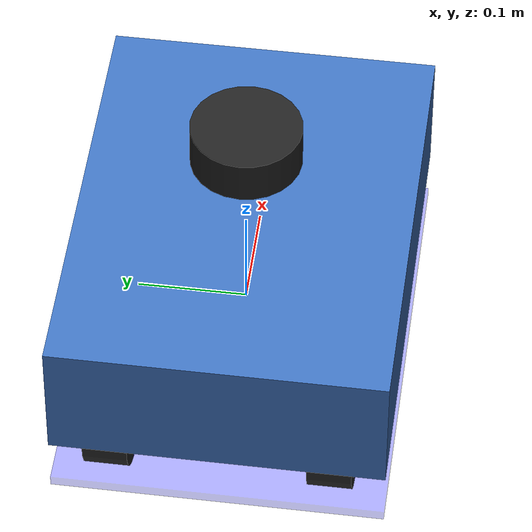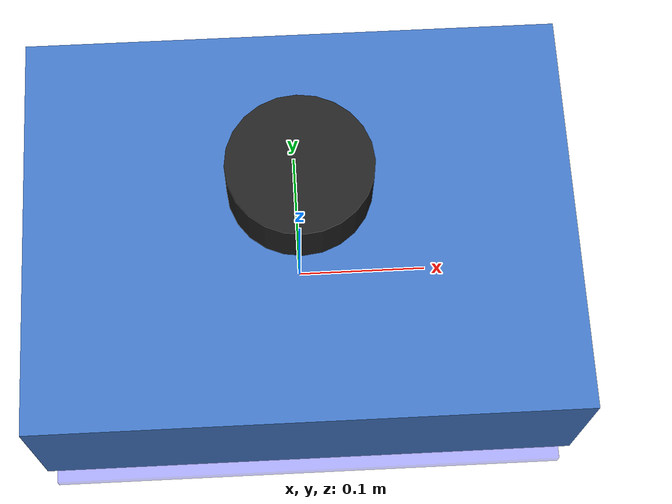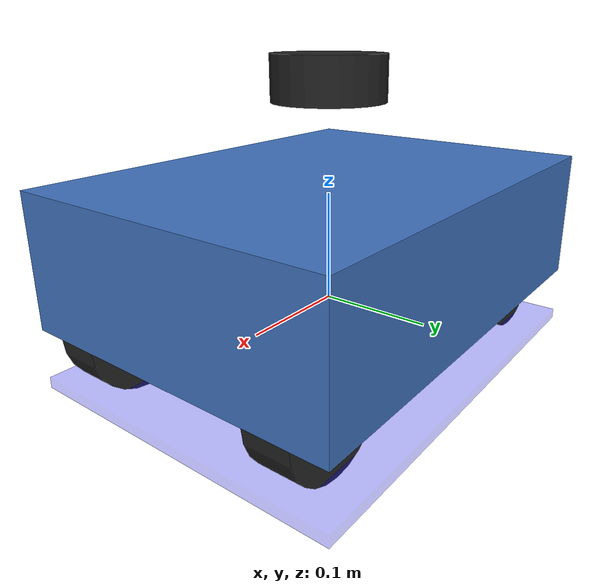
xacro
<?xml version="1.0"?>
<robot name="meister_robot" xmlns:xacro="http://www.ros.org/wiki/xacro" xmlns:gazebo="http://gazebo.apache.org/xmlns/gazebo">

  <!-- ────────────────────────────────────
       Arguments
       ──────────────────────────────────── -->
  <xacro:arg name="namespace" default=""/>
  <xacro:property name="ns" value="$(arg namespace)"/>

  <!-- ────────────────────────────────────
       Includes
       ──────────────────────────────────── -->
  <xacro:include filename="mecanum_wheel.xacro"/>
  <xacro:include filename="lidar.xacro"/>
  <xacro:include filename="inertial_macros.xacro"/>

  <!-- ────────────────────────────────────
       Robot constants
       ──────────────────────────────────── -->
  <!-- Body dimensions -->
  <xacro:property name="body_length" value="0.4"/>
  <xacro:property name="body_width"  value="0.3"/>
  <xacro:property name="body_height" value="0.12"/>
  <xacro:property name="body_mass"   value="2.0"/>

  <!-- Wheel geometry -->
  <xacro:property name="wheel_radius" value="0.05"/>

  <!-- Kinematic layout: wheel positions from robot centre (m) -->
  <!-- wheelbase (front-rear axle distance) = 0.30 m → half = 0.15 -->
  <xacro:property name="lx" value="0.15"/>
  <!-- track   (left-right wheel distance)  = 0.20 m → half = 0.10 -->
  <xacro:property name="ly" value="0.10"/>
  <!-- L = lx + ly ≈ 0.25 m (used by mecanum_controller.py) -->
  <xacro:property name="L"  value="${lx + ly}"/>

  <!-- ────────────────────────────────────
       Links: base_footprint → base_link
       ──────────────────────────────────── -->
  <link name="base_footprint">
    <collision>
      <geometry>
        <box size="${body_length} ${body_width} 0.01"/>
      </geometry>
    </collision>
    <visual>
      <geometry>
        <box size="${body_length} ${body_width} 0.01"/>
      </geometry>
      <material name="footprint_material">
        <color rgba="0.0 0.0 1.0 0.3"/>
      </material>
    </visual>
  </link>

  <link name="base_link"/>

  <!-- base_footprint sits on the ground (z=0 in world);
       base_link is wheel_radius above ground so wheel axes are at z=0 on base_link -->
  <joint name="base_footprint_joint" type="fixed">
    <parent link="base_link"/>
    <child link="base_footprint"/>
    <origin xyz="0 0 -${wheel_radius}"/>
  </joint>

  <!-- ────────────────────────────────────
       Chassis body
       ──────────────────────────────────── -->
  <link name="chassis">
    <visual>
      <origin xyz="0 0 ${body_height/2}" rpy="0 0 0"/>
      <geometry>
        <box size="${body_length} ${body_width} ${body_height}"/>
      </geometry>
      <material name="chassis_material">
        <color rgba="0.25 0.45 0.75 1.0"/>
      </material>
    </visual>
    <collision>
      <origin xyz="0 0 ${body_height/2}"/>
      <geometry>
        <box size="${body_length} ${body_width} ${body_height}"/>
      </geometry>
    </collision>
    <xacro:inertial_box mass="${body_mass}" x="${body_length}" y="${body_width}" z="${body_height}">
      <origin xyz="0 0 ${body_height/2}" rpy="0 0 0"/>
    </xacro:inertial_box>
  </link>

  <joint name="chassis_joint" type="fixed">
    <parent link="base_link"/>
    <child link="chassis"/>
    <origin xyz="0 0 0"/>
  </joint>

  <!-- ────────────────────────────────────
       Mecanum wheels
       ──────────────────────────────────── -->
  <xacro:mecanum_wheel name="lf" x="${ lx}" y="${ ly}" z="0"/>
  <xacro:mecanum_wheel name="rf" x="${ lx}" y="${-ly}" z="0"/>
  <xacro:mecanum_wheel name="lr" x="${-lx}" y="${ ly}" z="0"/>
  <xacro:mecanum_wheel name="rr" x="${-lx}" y="${-ly}" z="0"/>

  <!-- ────────────────────────────────────
       2D LiDAR
       ──────────────────────────────────── -->
  <xacro:lidar name="laser_link" x="0" y="0" z="0.2" roll="0" pitch="0" yaw="0"/>

  <!-- ────────────────────────────────────
       Gazebo simulation plugins
       ──────────────────────────────────── -->

  <!-- Friction properties -->
  <gazebo reference="chassis">
    <mu1>0.8</mu1>
    <mu2>0.8</mu2>
  </gazebo>

  <gazebo reference="lf_wheel">
    <mu1>0.4</mu1>
    <mu2>0.4</mu2>
  </gazebo>
  <gazebo reference="rf_wheel">
    <mu1>0.4</mu1>
    <mu2>0.4</mu2>
  </gazebo>
  <gazebo reference="lr_wheel">
    <mu1>0.4</mu1>
    <mu2>0.4</mu2>
  </gazebo>
  <gazebo reference="rr_wheel">
    <mu1>0.4</mu1>
    <mu2>0.4</mu2>
  </gazebo>

  <!-- Joint state publisher (publishes joint_states topic) -->
  <gazebo>
    <plugin filename="gz-sim-joint-state-publisher-system"
            name="gz::sim::systems::JointStatePublisher">
      <topic>joint_states</topic>
      <joint_name>lf_wheel_joint</joint_name>
      <joint_name>rf_wheel_joint</joint_name>
      <joint_name>lr_wheel_joint</joint_name>
      <joint_name>rr_wheel_joint</joint_name>
    </plugin>
  </gazebo>

  <gazebo>
    <plugin filename="libgz-sim-mecanum-drive-system"
            name="gz::sim::systems::MecanumDrive">
      <front_left_joint>lf_wheel_joint</front_left_joint>
      <front_right_joint>rf_wheel_joint</front_right_joint>
      <back_left_joint>lr_wheel_joint</back_left_joint>
      <back_right_joint>rr_wheel_joint</back_right_joint>
      <wheel_separation>${2 * ly}</wheel_separation>
      <wheelbase>${2 * lx}</wheelbase>
      <wheel_radius>${wheel_radius}</wheel_radius>
      <odom_publish_frequency>50</odom_publish_frequency>
      <topic>${ns + '/cmd_vel' if ns else 'cmd_vel'}</topic>
      <min_acceleration>-3.0</min_acceleration>
      <max_acceleration>3.0</max_acceleration>
      <odom_topic>${ns + '/odom' if ns else 'odom'}</odom_topic>
      <frame_id>${ns + '/odom' if ns else 'odom'}</frame_id>
      <child_frame_id>${ns + '/base_link' if ns else 'base_link'}</child_frame_id>
      <tf_topic>/tf</tf_topic>
    </plugin>
  </gazebo>

</robot>

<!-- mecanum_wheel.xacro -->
<robot xmlns:xacro="http://www.ros.org/wiki/xacro">

  <xacro:include filename="inertial_macros.xacro"/>

  <xacro:macro name="mecanum_wheel" params="name x y z">
    <xacro:property name="wh_r" value="0.05"/>
    <xacro:property name="wh_w" value="0.04"/>
    <xacro:property name="wh_mass" value="0.15"/>
    <!-- side: +1 for left (y>0), -1 for right (y<0) -->
    <xacro:property name="side" value="${1 if y > 0 else -1}"/>

    <joint name="${name}_wheel_joint" type="continuous">
      <parent link="base_link"/>
      <child link="${name}_wheel"/>
      <origin xyz="${x} ${y} ${z}" rpy="${-1.5708 * side} 0 0"/>
      <!-- Left wheels (+side):   axis 0 0  1  →  spin +Z in child = +Y in parent (forward)
           Right wheels (-side): axis 0 0 -1  →  spin -Z in child = +Y in parent (forward) -->
      <axis xyz="0 0 ${side}"/>
      <limit effort="0.3" velocity="10.0"/>
      <dynamics damping="0.01" friction="0.001"/>
    </joint>

    <link name="${name}_wheel">
      <visual>
        <origin xyz="0 0 0" rpy="0 0 0"/>
        <geometry>
          <cylinder radius="${wh_r}" length="${wh_w}"/>
        </geometry>
        <material name="wheel_material">
          <color rgba="0.15 0.15 0.15 1.0"/>
        </material>
      </visual>
      <collision>
        <origin xyz="0 0 0" rpy="0 0 0"/>
        <geometry>
          <cylinder radius="${wh_r}" length="${wh_w}"/>
        </geometry>
      </collision>
      <xacro:inertial_cylinder mass="${wh_mass}" length="${wh_w}" radius="${wh_r}">
        <origin xyz="0 0 0" rpy="0 0 0"/>
      </xacro:inertial_cylinder>
    </link>

    <!-- Transmission block (URDF standard, no ros2_control runtime required) -->
    <transmission name="${name}_wheel_trans">
      <type>transmission_interface/SimpleTransmission</type>
      <joint name="${name}_wheel_joint">
        <hardwareInterface>hardware_interface/VelocityJointInterface</hardwareInterface>
      </joint>
      <actuator name="${name}_wheel_motor">
        <mechanicalReduction>1</mechanicalReduction>
      </actuator>
    </transmission>
  </xacro:macro>

</robot>

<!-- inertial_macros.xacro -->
<robot xmlns:xacro="http://www.ros.org/wiki/xacro">

  <!-- Standard inertial calculations
       https://en.wikipedia.org/wiki/List_of_moments_of_inertia -->

  <xacro:macro name="inertial_sphere" params="mass radius *origin">
    <inertial>
      <xacro:insert_block name="origin"/>
      <mass value="${mass}"/>
      <inertia ixx="${(2/5) * mass * (radius*radius)}" ixy="0.0" ixz="0.0"
               iyy="${(2/5) * mass * (radius*radius)}" iyz="0.0"
               izz="${(2/5) * mass * (radius*radius)}"/>
    </inertial>
  </xacro:macro>

  <xacro:macro name="inertial_box" params="mass x y z *origin">
    <inertial>
      <xacro:insert_block name="origin"/>
      <mass value="${mass}"/>
      <inertia ixx="${(1/12) * mass * (y*y+z*z)}" ixy="0.0" ixz="0.0"
               iyy="${(1/12) * mass * (x*x+z*z)}" iyz="0.0"
               izz="${(1/12) * mass * (x*x+y*y)}"/>
    </inertial>
  </xacro:macro>

  <xacro:macro name="inertial_cylinder" params="mass length radius *origin">
    <inertial>
      <xacro:insert_block name="origin"/>
      <mass value="${mass}"/>
      <inertia ixx="${(1/12) * mass * (3*radius*radius + length*length)}" ixy="0.0" ixz="0.0"
               iyy="${(1/12) * mass * (3*radius*radius + length*length)}" iyz="0.0"
               izz="${(1/2) * mass * (radius*radius)}"/>
    </inertial>
  </xacro:macro>

</robot>

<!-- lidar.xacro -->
<robot xmlns:xacro="http://www.ros.org/wiki/xacro" xmlns:gazebo="http://gazebo.apache.org/xmlns/gazebo">

  <xacro:include filename="inertial_macros.xacro"/>

  <xacro:macro name="lidar" params="name x y z roll pitch yaw">
    <joint name="${name}_joint" type="fixed">
      <parent link="base_link"/>
      <child link="${name}"/>
      <origin xyz="${x} ${y} ${z}" rpy="${roll} ${pitch} ${yaw}"/>
    </joint>

    <link name="${name}">
      <visual>
        <origin xyz="0 0 0"/>
        <geometry>
          <cylinder length="0.04" radius="0.05"/>
        </geometry>
        <material name="laser_material">
          <color rgba="0.13 0.13 0.13 1.0"/>
        </material>
      </visual>
      <collision>
        <origin xyz="0 0 0"/>
        <geometry>
          <cylinder length="0.04" radius="0.05"/>
        </geometry>
      </collision>
      <xacro:inertial_cylinder mass="0.05" length="0.04" radius="0.05">
        <origin xyz="0 0 0" rpy="0 0 0"/>
      </xacro:inertial_cylinder>
    </link>

    <!-- Gazebo gpu_lidar sensor plugin -->
    <gazebo reference="${name}">
      <sensor name="${name}_sensor" type="gpu_lidar">
        <pose>0 0 0 0 0 0</pose>
        <always_on>true</always_on>
        <visualize>true</visualize>
        <update_rate>10</update_rate>
        <topic>scan</topic>
        <gz_frame_id>${name}</gz_frame_id>
        <lidar>
          <scan>
            <horizontal>
              <samples>360</samples>
              <min_angle>-3.14159</min_angle>
              <max_angle>3.14159</max_angle>
            </horizontal>
          </scan>
          <range>
            <min>0.3</min>
            <max>12.0</max>
          </range>
        </lidar>
      </sensor>
    </gazebo>
  </xacro:macro>

</robot>
